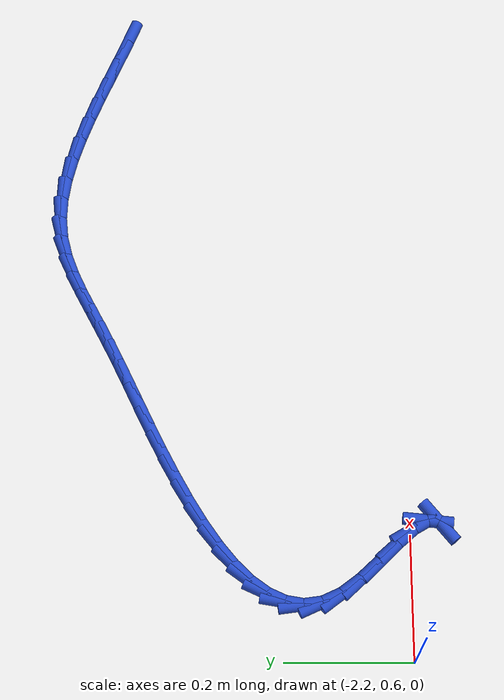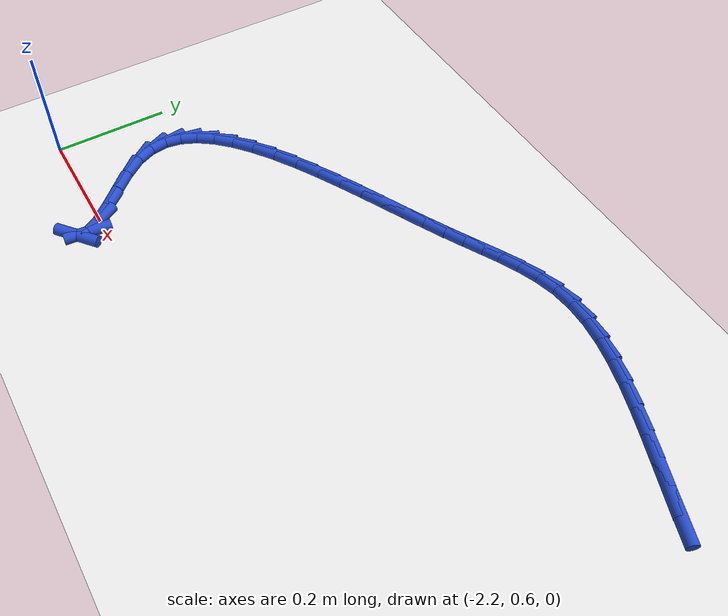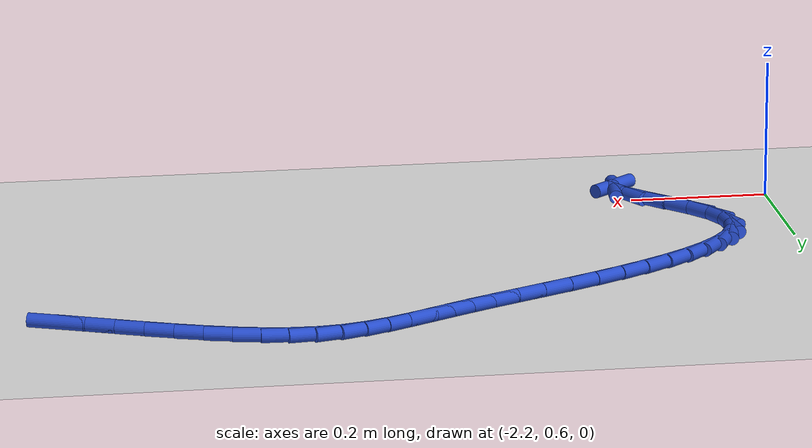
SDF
<sdf version="1.6">
 <world name="default">
  <model name="ground_plane">
   <static>1</static>
   <link name="link">
    <collision name="collision">
     <geometry><plane><normal>0 0 1</normal><size>100 100</size></plane></geometry>
     <surface><friction><ode><mu>100</mu><mu2>50</mu2></ode></friction></surface>
    </collision>
    <visual name="visual">
     <cast_shadows>0</cast_shadows>
     <geometry><plane><normal>0 0 1</normal><size>100 100</size></plane></geometry>
     <material>
      <script><uri>file://media/materials/scripts/gazebo.material</uri><name>Gazebo/WhiteGlow</name></script>
     </material>
    </visual>
   </link>
  </model>
  <model name="line">
   <link name="link_58">
    <pose>-1.1146447514617401 1.0660751699006068 0.01 0 1.57 -0.38190877683297375</pose>
    <collision name="collision">
     <geometry><cylinder><radius>0.01</radius><length>0.08</length></cylinder></geometry>
    </collision>
    <visual name="visual">
     <material>
      <script><name>Gazebo/Blue</name><uri>file://media/materials/scripts/gazebo.material</uri></script>
     </material>
     <geometry><cylinder><radius>0.01</radius><length>0.08</length></cylinder></geometry>
    </visual>
   </link>
   <link name="link_59">
    <pose>-1.1525604105772411 1.0813031487823481 0.01 0 1.57 -0.39362963771132703</pose>
    <collision name="collision">
     <geometry><cylinder><radius>0.01</radius><length>0.08</length></cylinder></geometry>
    </collision>
    <visual name="visual">
     <material>
      <script><name>Gazebo/Blue</name><uri>file://media/materials/scripts/gazebo.material</uri></script>
     </material>
     <geometry><cylinder><radius>0.01</radius><length>0.08</length></cylinder></geometry>
    </visual>
   </link>
   <link name="link_60">
    <pose>-1.19104057783195 1.0972841237543112 0.01 0 1.57 -0.39124278950405356</pose>
    <collision name="collision">
     <geometry><cylinder><radius>0.01</radius><length>0.08</length></cylinder></geometry>
    </collision>
    <visual name="visual">
     <material>
      <script><name>Gazebo/Blue</name><uri>file://media/materials/scripts/gazebo.material</uri></script>
     </material>
     <geometry><cylinder><radius>0.01</radius><length>0.08</length></cylinder></geometry>
    </visual>
   </link>
   <link name="link_61">
    <pose>-1.229871749065081 1.113302309517934 0.01 0 1.57 -0.3750112583698487</pose>
    <collision name="collision">
     <geometry><cylinder><radius>0.01</radius><length>0.08</length></cylinder></geometry>
    </collision>
    <visual name="visual">
     <material>
      <script><name>Gazebo/Blue</name><uri>file://media/materials/scripts/gazebo.material</uri></script>
     </material>
     <geometry><cylinder><radius>0.01</radius><length>0.08</length></cylinder></geometry>
    </visual>
   </link>
   <link name="link_62">
    <pose>-1.268840420115847 1.1286419207746532 0.01 0 1.57 -0.34427785900492</pose>
    <collision name="collision">
     <geometry><cylinder><radius>0.01</radius><length>0.08</length></cylinder></geometry>
    </collision>
    <visual name="visual">
     <material>
      <script><name>Gazebo/Blue</name><uri>file://media/materials/scripts/gazebo.material</uri></script>
     </material>
     <geometry><cylinder><radius>0.01</radius><length>0.08</length></cylinder></geometry>
    </visual>
   </link>
   <link name="link_63">
    <pose>-1.307733086823463 1.1425871722259076 0.01 0 1.57 -0.2974860603792107</pose>
    <collision name="collision">
     <geometry><cylinder><radius>0.01</radius><length>0.08</length></cylinder></geometry>
    </collision>
    <visual name="visual">
     <material>
      <script><name>Gazebo/Blue</name><uri>file://media/materials/scripts/gazebo.material</uri></script>
     </material>
     <geometry><cylinder><radius>0.01</radius><length>0.08</length></cylinder></geometry>
    </visual>
   </link>
   <link name="link_64">
    <pose>-1.3463362450271412 1.1544222785731335 0.01 0 1.57 -0.23219548701608317</pose>
    <collision name="collision">
     <geometry><cylinder><radius>0.01</radius><length>0.08</length></cylinder></geometry>
    </collision>
    <visual name="visual">
     <material>
      <script><name>Gazebo/Blue</name><uri>file://media/materials/scripts/gazebo.material</uri></script>
     </material>
     <geometry><cylinder><radius>0.01</radius><length>0.08</length></cylinder></geometry>
    </visual>
   </link>
   <link name="link_65">
    <pose>-1.3844363905660964 1.163431454517769 0.01 0 1.57 -0.14522320170177352</pose>
    <collision name="collision">
     <geometry><cylinder><radius>0.01</radius><length>0.08</length></cylinder></geometry>
    </collision>
    <visual name="visual">
     <material>
      <script><name>Gazebo/Blue</name><uri>file://media/materials/scripts/gazebo.material</uri></script>
     </material>
     <geometry><cylinder><radius>0.01</radius><length>0.08</length></cylinder></geometry>
    </visual>
   </link>
   <link name="link_66">
    <pose>-1.4218200192795427 1.1688989147612523 0.01 0 1.57 -0.033179574759797645</pose>
    <collision name="collision">
     <geometry><cylinder><radius>0.01</radius><length>0.08</length></cylinder></geometry>
    </collision>
    <visual name="visual">
     <material>
      <script><name>Gazebo/Blue</name><uri>file://media/materials/scripts/gazebo.material</uri></script>
     </material>
     <geometry><cylinder><radius>0.01</radius><length>0.08</length></cylinder></geometry>
    </visual>
   </link>
   <link name="link_67">
    <pose>-1.458273627006693 1.1701088740050203 0.01 0 1.57 0.10603913842375869</pose>
    <collision name="collision">
     <geometry><cylinder><radius>0.01</radius><length>0.08</length></cylinder></geometry>
    </collision>
    <visual name="visual">
     <material>
      <script><name>Gazebo/Blue</name><uri>file://media/materials/scripts/gazebo.material</uri></script>
     </material>
     <geometry><cylinder><radius>0.01</radius><length>0.08</length></cylinder></geometry>
    </visual>
   </link>
   <link name="link_68">
    <pose>-1.493584416676293 1.1663504507755174 0.01 0 1.57 0.2526312601448719</pose>
    <collision name="collision">
     <geometry><cylinder><radius>0.01</radius><length>0.08</length></cylinder></geometry>
    </collision>
    <visual name="visual">
     <material>
      <script><name>Gazebo/Blue</name><uri>file://media/materials/scripts/gazebo.material</uri></script>
     </material>
     <geometry><cylinder><radius>0.01</radius><length>0.08</length></cylinder></geometry>
    </visual>
   </link>
   <link name="link_69">
    <pose>-1.5276330485499787 1.1575609112326115 0.01 0 1.57 0.366065053934845</pose>
    <collision name="collision">
     <geometry><cylinder><radius>0.01</radius><length>0.08</length></cylinder></geometry>
    </collision>
    <visual name="visual">
     <material>
      <script><name>Gazebo/Blue</name><uri>file://media/materials/scripts/gazebo.material</uri></script>
     </material>
     <geometry><cylinder><radius>0.01</radius><length>0.08</length></cylinder></geometry>
    </visual>
   </link>
   <link name="link_70">
    <pose>-1.560486102904276 1.144966918675247 0.01 0 1.57 0.44190268802495264</pose>
    <collision name="collision">
     <geometry><cylinder><radius>0.01</radius><length>0.08</length></cylinder></geometry>
    </collision>
    <visual name="visual">
     <material>
      <script><name>Gazebo/Blue</name><uri>file://media/materials/scripts/gazebo.material</uri></script>
     </material>
     <geometry><cylinder><radius>0.01</radius><length>0.08</length></cylinder></geometry>
    </visual>
   </link>
   <link name="link_71">
    <pose>-1.5922321499440586 1.1299476415036387 0.01 0 1.57 0.48174632583468585</pose>
    <collision name="collision">
     <geometry><cylinder><radius>0.01</radius><length>0.08</length></cylinder></geometry>
    </collision>
    <visual name="visual">
     <material>
      <script><name>Gazebo/Blue</name><uri>file://media/materials/scripts/gazebo.material</uri></script>
     </material>
     <geometry><cylinder><radius>0.01</radius><length>0.08</length></cylinder></geometry>
    </visual>
   </link>
   <link name="link_72">
    <pose>-1.6229597598741985 1.113882248118001 0.01 0 1.57 0.48869708060532124</pose>
    <collision name="collision">
     <geometry><cylinder><radius>0.01</radius><length>0.08</length></cylinder></geometry>
    </collision>
    <visual name="visual">
     <material>
      <script><name>Gazebo/Blue</name><uri>file://media/materials/scripts/gazebo.material</uri></script>
     </material>
     <geometry><cylinder><radius>0.01</radius><length>0.08</length></cylinder></geometry>
    </visual>
   </link>
   <link name="link_73">
    <pose>-1.6528910391575342 1.0979673168758388 0.01 0 1.57 0.4811240071334427</pose>
    <collision name="collision">
     <geometry><cylinder><radius>0.01</radius><length>0.08</length></cylinder></geometry>
    </collision>
    <visual name="visual">
     <material>
      <script><name>Gazebo/Blue</name><uri>file://media/materials/scripts/gazebo.material</uri></script>
     </material>
     <geometry><cylinder><radius>0.01</radius><length>0.08</length></cylinder></geometry>
    </visual>
   </link>
   <link name="link_74">
    <pose>-1.6831444299435103 1.0821738266323717 0.01 0 1.57 0.46798000543534257</pose>
    <collision name="collision">
     <geometry><cylinder><radius>0.01</radius><length>0.08</length></cylinder></geometry>
    </collision>
    <visual name="visual">
     <material>
      <script><name>Gazebo/Blue</name><uri>file://media/materials/scripts/gazebo.material</uri></script>
     </material>
     <geometry><cylinder><radius>0.01</radius><length>0.08</length></cylinder></geometry>
    </visual>
   </link>
   <link name="link_75">
    <pose>-1.7152072195528063 1.0659684178960958 0.01 0 1.57 0.4530268195718052</pose>
    <collision name="collision">
     <geometry><cylinder><radius>0.01</radius><length>0.08</length></cylinder></geometry>
    </collision>
    <visual name="visual">
     <material>
      <script><name>Gazebo/Blue</name><uri>file://media/materials/scripts/gazebo.material</uri></script>
     </material>
     <geometry><cylinder><radius>0.01</radius><length>0.08</length></cylinder></geometry>
    </visual>
   </link>
   <link name="link_76">
    <pose>-1.7503343571022705 1.0488687504789944 0.01 0 1.57 0.44626169773260055</pose>
    <collision name="collision">
     <geometry><cylinder><radius>0.01</radius><length>0.08</length></cylinder></geometry>
    </collision>
    <visual name="visual">
     <material>
      <script><name>Gazebo/Blue</name><uri>file://media/materials/scripts/gazebo.material</uri></script>
     </material>
     <geometry><cylinder><radius>0.01</radius><length>0.08</length></cylinder></geometry>
    </visual>
   </link>
   <link name="link_77">
    <pose>-1.7882132434256364 1.0307454931832851 0.01 0 1.57 0.4493194809005314</pose>
    <collision name="collision">
     <geometry><cylinder><radius>0.01</radius><length>0.08</length></cylinder></geometry>
    </collision>
    <visual name="visual">
     <material>
      <script><name>Gazebo/Blue</name><uri>file://media/materials/scripts/gazebo.material</uri></script>
     </material>
     <geometry><cylinder><radius>0.01</radius><length>0.08</length></cylinder></geometry>
    </visual>
   </link>
   <link name="link_78">
    <pose>-1.8278860915795807 1.0116146099119112 0.01 0 1.57 0.4610487964530609</pose>
    <collision name="collision">
     <geometry><cylinder><radius>0.01</radius><length>0.08</length></cylinder></geometry>
    </collision>
    <visual name="visual">
     <material>
      <script><name>Gazebo/Blue</name><uri>file://media/materials/scripts/gazebo.material</uri></script>
     </material>
     <geometry><cylinder><radius>0.01</radius><length>0.08</length></cylinder></geometry>
    </visual>
   </link>
   <link name="link_79">
    <pose>-1.8683931170451047 0.9914925144181854 0.01 0 1.57 0.481438530296922</pose>
    <collision name="collision">
     <geometry><cylinder><radius>0.01</radius><length>0.08</length></cylinder></geometry>
    </collision>
    <visual name="visual">
     <material>
      <script><name>Gazebo/Blue</name><uri>file://media/materials/scripts/gazebo.material</uri></script>
     </material>
     <geometry><cylinder><radius>0.01</radius><length>0.08</length></cylinder></geometry>
    </visual>
   </link>
   <link name="link_80">
    <pose>-1.9087745353032057 0.970395620455421 0.01 0 1.57 0.5114468252621107</pose>
    <collision name="collision">
     <geometry><cylinder><radius>0.01</radius><length>0.08</length></cylinder></geometry>
    </collision>
    <visual name="visual">
     <material>
      <script><name>Gazebo/Blue</name><uri>file://media/materials/scripts/gazebo.material</uri></script>
     </material>
     <geometry><cylinder><radius>0.01</radius><length>0.08</length></cylinder></geometry>
    </visual>
   </link>
   <link name="link_81">
    <pose>-1.9480705618348846 0.9483403417769302 0.01 0 1.57 0.5530877667774309</pose>
    <collision name="collision">
     <geometry><cylinder><radius>0.01</radius><length>0.08</length></cylinder></geometry>
    </collision>
    <visual name="visual">
     <material>
      <script><name>Gazebo/Blue</name><uri>file://media/materials/scripts/gazebo.material</uri></script>
     </material>
     <geometry><cylinder><radius>0.01</radius><length>0.08</length></cylinder></geometry>
    </visual>
   </link>
   <link name="link_82">
    <pose>-1.9853214121211393 0.9253430921360262 0.01 0 1.57 0.6097588334511302</pose>
    <collision name="collision">
     <geometry><cylinder><radius>0.01</radius><length>0.08</length></cylinder></geometry>
    </collision>
    <visual name="visual">
     <material>
      <script><name>Gazebo/Blue</name><uri>file://media/materials/scripts/gazebo.material</uri></script>
     </material>
     <geometry><cylinder><radius>0.01</radius><length>0.08</length></cylinder></geometry>
    </visual>
   </link>
   <link name="link_83">
    <pose>-2.019567301642969 0.9014202852860208 0.01 0 1.57 0.6868455316124791</pose>
    <collision name="collision">
     <geometry><cylinder><radius>0.01</radius><length>0.08</length></cylinder></geometry>
    </collision>
    <visual name="visual">
     <material>
      <script><name>Gazebo/Blue</name><uri>file://media/materials/scripts/gazebo.material</uri></script>
     </material>
     <geometry><cylinder><radius>0.01</radius><length>0.08</length></cylinder></geometry>
    </visual>
   </link>
   <link name="link_84">
    <pose>-2.049848445881374 0.8765883349802277 0.01 0 1.57 0.7926035250982975</pose>
    <collision name="collision">
     <geometry><cylinder><radius>0.01</radius><length>0.08</length></cylinder></geometry>
    </collision>
    <visual name="visual">
     <material>
      <script><name>Gazebo/Blue</name><uri>file://media/materials/scripts/gazebo.material</uri></script>
     </material>
     <geometry><cylinder><radius>0.01</radius><length>0.08</length></cylinder></geometry>
    </visual>
   </link>
   <link name="link_85">
    <pose>-2.075205060317353 0.8508636549719591 0.01 0 1.57 0.9389060124912676</pose>
    <collision name="collision">
     <geometry><cylinder><radius>0.01</radius><length>0.08</length></cylinder></geometry>
    </collision>
    <visual name="visual">
     <material>
      <script><name>Gazebo/Blue</name><uri>file://media/materials/scripts/gazebo.material</uri></script>
     </material>
     <geometry><cylinder><radius>0.01</radius><length>0.08</length></cylinder></geometry>
    </visual>
   </link>
   <link name="link_86">
    <pose>-2.094677360431904 0.8242626590145278 0.01 0 1.57 1.139772160502898</pose>
    <collision name="collision">
     <geometry><cylinder><radius>0.01</radius><length>0.08</length></cylinder></geometry>
    </collision>
    <visual name="visual">
     <material>
      <script><name>Gazebo/Blue</name><uri>file://media/materials/scripts/gazebo.material</uri></script>
     </material>
     <geometry><cylinder><radius>0.01</radius><length>0.08</length></cylinder></geometry>
    </visual>
   </link>
   <link name="link_87">
    <pose>-2.1073055617060272 0.7968017608612468 0.01 0 1.57 1.4019744992765353</pose>
    <collision name="collision">
     <geometry><cylinder><radius>0.01</radius><length>0.08</length></cylinder></geometry>
    </collision>
    <visual name="visual">
     <material>
      <script><name>Gazebo/Blue</name><uri>file://media/materials/scripts/gazebo.material</uri></script>
     </material>
     <geometry><cylinder><radius>0.01</radius><length>0.08</length></cylinder></geometry>
    </visual>
   </link>
   <link name="link_88">
    <pose>-2.112129879620723 0.768497374265428 0.01 0 1.57 -1.4363850107947265</pose>
    <collision name="collision">
     <geometry><cylinder><radius>0.01</radius><length>0.08</length></cylinder></geometry>
    </collision>
    <visual name="visual">
     <material>
      <script><name>Gazebo/Blue</name><uri>file://media/materials/scripts/gazebo.material</uri></script>
     </material>
     <geometry><cylinder><radius>0.01</radius><length>0.08</length></cylinder></geometry>
    </visual>
   </link>
   <link name="link_89">
    <pose>-2.108190529656988 0.7393659129803849 0.01 0 1.57 -1.1427244110443526</pose>
    <collision name="collision">
     <geometry><cylinder><radius>0.01</radius><length>0.08</length></cylinder></geometry>
    </collision>
    <visual name="visual">
     <material>
      <script><name>Gazebo/Blue</name><uri>file://media/materials/scripts/gazebo.material</uri></script>
     </material>
     <geometry><cylinder><radius>0.01</radius><length>0.08</length></cylinder></geometry>
    </visual>
   </link>
   <link name="link_90">
    <pose>-2.094528302604822 0.709423895216642 0.01 0 1.57 -0.9233310152574232</pose>
    <collision name="collision">
     <geometry><cylinder><radius>0.01</radius><length>0.08</length></cylinder></geometry>
    </collision>
    <visual name="visual">
     <material>
      <script><name>Gazebo/Blue</name><uri>file://media/materials/scripts/gazebo.material</uri></script>
     </material>
     <geometry><cylinder><radius>0.01</radius><length>0.08</length></cylinder></geometry>
    </visual>
   </link>
   <link name="link_91">
    <pose>-2.071460592598484 0.6789196284087013 0.01 0 1.57 -0.8184438780672131</pose>
    <collision name="collision">
     <geometry><cylinder><radius>0.01</radius><length>0.08</length></cylinder></geometry>
    </collision>
    <visual name="visual">
     <material>
      <script><name>Gazebo/Blue</name><uri>file://media/materials/scripts/gazebo.material</uri></script>
     </material>
     <geometry><cylinder><radius>0.01</radius><length>0.08</length></cylinder></geometry>
    </visual>
   </link>
   <link name="link_92">
    <pose>-2.043292429935153 0.6488254437027827 0.01 0 1.57 -0.7921575952335149</pose>
    <collision name="collision">
     <geometry><cylinder><radius>0.01</radius><length>0.08</length></cylinder></geometry>
    </collision>
    <visual name="visual">
     <material>
      <script><name>Gazebo/Blue</name><uri>file://media/materials/scripts/gazebo.material</uri></script>
     </material>
     <geometry><cylinder><radius>0.01</radius><length>0.08</length></cylinder></geometry>
    </visual>
   </link>
   <link name="link_93">
    <pose>-2.015105293179226 0.6202546497398991 0.01 0 1.57 -0.8426030125410588</pose>
    <collision name="collision">
     <geometry><cylinder><radius>0.01</radius><length>0.08</length></cylinder></geometry>
    </collision>
    <visual name="visual">
     <material>
      <script><name>Gazebo/Blue</name><uri>file://media/materials/scripts/gazebo.material</uri></script>
     </material>
     <geometry><cylinder><radius>0.01</radius><length>0.08</length></cylinder></geometry>
    </visual>
   </link>
   <link name="link_94">
    <pose>-1.9919806608951023 0.5943205551610621 0.01 0 1.57 -1.04137990059905</pose>
    <collision name="collision">
     <geometry><cylinder><radius>0.01</radius><length>0.08</length></cylinder></geometry>
    </collision>
    <visual name="visual">
     <material>
      <script><name>Gazebo/Blue</name><uri>file://media/materials/scripts/gazebo.material</uri></script>
     </material>
     <geometry><cylinder><radius>0.01</radius><length>0.08</length></cylinder></geometry>
    </visual>
   </link>
   <link name="link_95">
    <pose>-1.9790000116471802 0.5721364686072847 0.01 0 1.57 1.4696708230710651</pose>
    <collision name="collision">
     <geometry><cylinder><radius>0.01</radius><length>0.08</length></cylinder></geometry>
    </collision>
    <visual name="visual">
     <material>
      <script><name>Gazebo/Blue</name><uri>file://media/materials/scripts/gazebo.material</uri></script>
     </material>
     <geometry><cylinder><radius>0.01</radius><length>0.08</length></cylinder></geometry>
    </visual>
   </link>
   <link name="link_96">
    <pose>-1.9807724440730832 0.5546691988354628 0.01 0 1.57 0.6835913863024506</pose>
    <collision name="collision">
     <geometry><cylinder><radius>0.01</radius><length>0.08</length></cylinder></geometry>
    </collision>
    <visual name="visual">
     <material>
      <script><name>Gazebo/Blue</name><uri>file://media/materials/scripts/gazebo.material</uri></script>
     </material>
     <geometry><cylinder><radius>0.01</radius><length>0.08</length></cylinder></geometry>
    </visual>
   </link>
  </model>
 </world>
</sdf>
